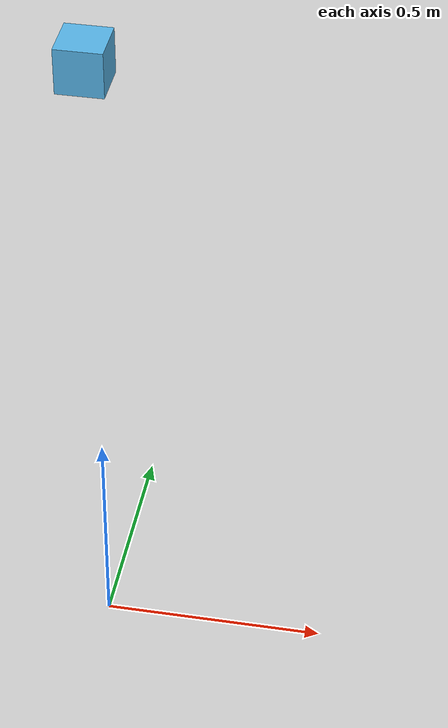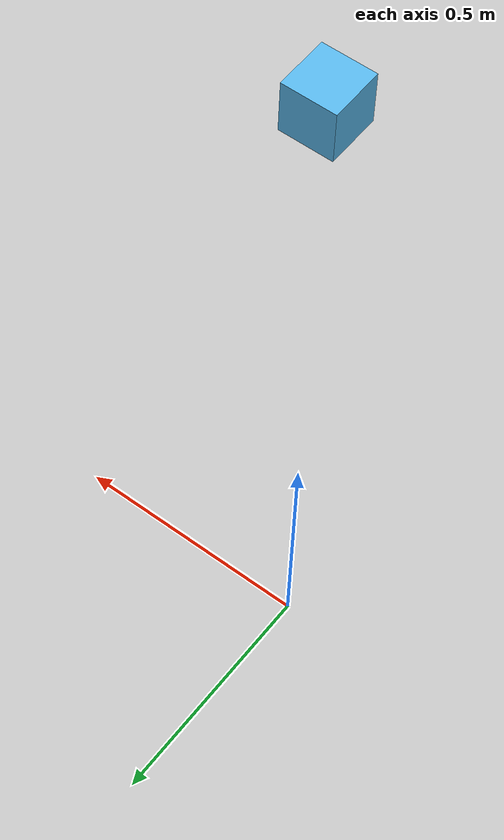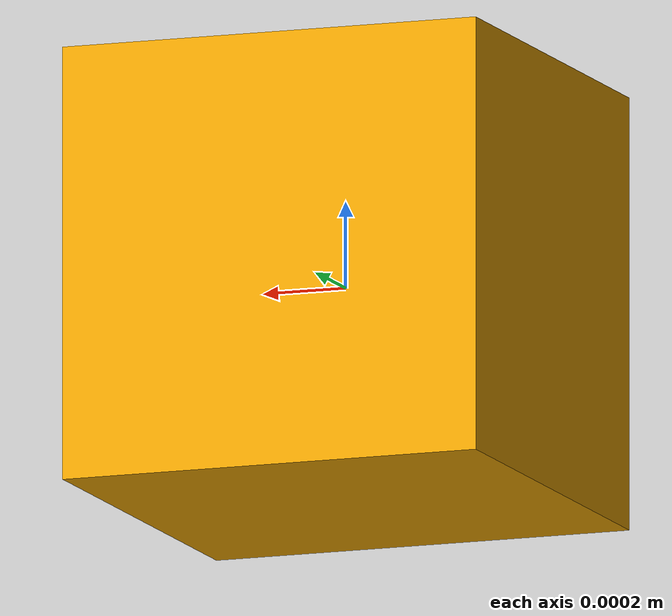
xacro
<?xml version="1.0"?>
<robot xmlns:xacro="http://www.ros.org/wiki/xacro" name="blackflys_spawn">
  <xacro:include filename="$(find velo2cam_gazebo)/../gazebo_models/bumblebee_xb3/bumblebee_xb3.urdf.xacro"/>
  <xacro:arg name="xyz" default="0 0 1.5" />
  <xacro:arg name="rpy" default="0 0 0" />
  <xacro:arg name="noise" default="0.007" />
  <xacro:arg name="hfov" default="0.750492" />
  <xacro:arg name="hz" default="1" />
  <xacro:arg name="baseline" default="0.12" />
  <xacro:arg name="cam_name" default="bumblebee_xb3" />

  <gazebo>
      <static>true</static>
  </gazebo>
  <!-- Base Footprint -->
  <link name="base_footprint">
    <inertial>
      <mass value="0.0001" />
      <origin xyz="0 0 0" />
      <inertia ixx="0.0001" ixy="0.0" ixz="0.0"
          iyy="0.0001" iyz="0.0"
          izz="0.0001" />
    </inertial>
    <visual>
        <origin xyz="0 0 0" rpy="0 0 0" />
        <geometry>
            <box size="0.001 0.001 0.001" />
        </geometry>
    </visual>
  </link>

  <gazebo reference="base_footprint">
    <static>true</static>
    <turnGravityOff>false</turnGravityOff>
  </gazebo>

  <bumblebee_xb3 parent="base_footprint" name="$(arg cam_name)" baseline="$(arg baseline)" hfov="$(arg hfov)" hz="$(arg hz)" noise="$(arg noise)">
    <origin xyz="$(arg xyz)" rpy="$(arg rpy)"/>
    <resolution>
          <width>1280</width>
          <height>960</height>
    </resolution>
  </bumblebee_xb3>
</robot>

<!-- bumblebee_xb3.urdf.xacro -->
<robot xmlns:xacro="http://www.ros.org/wiki/xacro" name="stereo_camera">
  <xacro:include filename="$(find velo2cam_gazebo)/../gazebo_models/bumblebee_xb3/stereo_sensor.urdf.xacro"/>
  <xacro:macro name="bumblebee_xb3" params="parent name baseline hfov hz noise *origin *resolution">
   <!-- Base Link -->
    <joint name="${name}_base_mount_joint" type="fixed">
      <xacro:insert_block name="origin" />
      <parent link="${parent}"/>
      <child link="${name}_link"/>
    </joint>

    <link name="${name}_link">
      <inertial>
        <mass value="0.1"/>
        <origin xyz="0 0 0" rpy="0 0 0"/>
        <inertia ixx="1e-6" ixy="0" ixz="0" iyy="1e-6" iyz="0" izz="1e-6" />
      </inertial>
      <collision name="collision">
        <origin xyz="0 0 0" rpy="0 0 0"/>
        <geometry>
          <box size="0.1 0.1 0.1"/>
        </geometry>
      </collision>
      <visual name="visual">
        <geometry>
          <box size="0.1 0.1 0.1"/>
        </geometry>
      </visual>
    </link>
    <stereo_sensor name="${name}" baseline="${baseline}" hfov="${hfov}" hz="${hz}" noise="${noise}">
      <xacro:insert_block name="resolution" />
    </stereo_sensor>
    <gazebo reference="${name}_link">
      <static>true</static>
      <turnGravityOff>false</turnGravityOff>
    </gazebo>
  </xacro:macro>
</robot>
